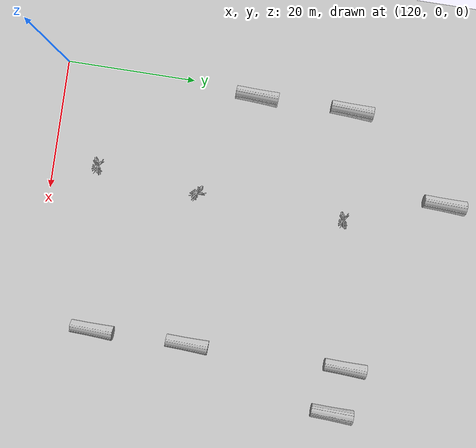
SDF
<sdf version="1.7">
 <world name="default">
  <model name="ground_plane">
   <static>1</static>
   <link name="link">
    <collision name="collision">
     <geometry><plane><normal>0 0 1</normal><size>100 100</size></plane></geometry>
     <surface><friction><ode><mu>100</mu><mu2>50</mu2></ode></friction></surface>
    </collision>
    <visual name="visual">
     <cast_shadows>0</cast_shadows>
     <geometry><plane><normal>0 0 1</normal><size>100 100</size></plane></geometry>
     <material>
      <script><uri>file://media/materials/scripts/gazebo.material</uri><name>Gazebo/Grey</name></script>
     </material>
    </visual>
   </link>
   <pose>0 0 -0.1 0 -0 0</pose>
  </model>
  <model name="buoy_3">
   <link name="link">
    <inertial>
     <pose>0 0 -2 0 -0 0</pose>
     <mass>20</mass>
     <inertia><ixx>1</ixx><ixy>0</ixy><ixz>0</ixz><iyy>1</iyy><iyz>0</iyz><izz>0.1</izz></inertia>
    </inertial>
    <collision name="upright">
     <geometry><mesh><uri>model://branche1_buoy/meshes/branche1.dae</uri></mesh></geometry>
    </collision>
    <visual name="trunk_visual">
     <geometry><mesh><uri>model://branche1_buoy/meshes/branche1.dae</uri></mesh></geometry>
    </visual>
   </link>
   <plugin name="TrunkBuoyancyPlugin" filename="libbuoyancy_gazebo_plugin.so">
    <wave_model>ocean_waves</wave_model>
    <fluid_density>1000</fluid_density>
    <fluid_level>0.0</fluid_level>
    <linear_drag>25.0</linear_drag>
    <angular_drag>2.0</angular_drag>
    <buoyancy name="buoyancy_sphere">
     <link_name>link</link_name>
     <pose>0 0 0.2 0 0 0</pose>
     <geometry><sphere><radius>0.325</radius></sphere></geometry>
    </buoyancy>
   </plugin>
   <plugin name="TrunkFollowPlugin" filename="libfollow_plugin.so">
    <link_name>link</link_name>
    <loop_forever>1</loop_forever>
    <line><direction>0</direction><length>-1</length><force>100</force><torque>1</torque></line>
   </plugin>
   <pose>135.637 6.93631 0.263866 0.134491 0.42653 1.75191</pose>
  </model>
  <model name="buoy_9">
   <link name="link">
    <inertial>
     <mass>200</mass>
     <inertia><ixx>10</ixx><ixy>0</ixy><ixz>0</ixz><iyy>10</iyy><iyz>0</iyz><izz>100</izz></inertia>
    </inertial>
    <collision name="trunk_collision">
     <pose>0 0 0 1.57 -0 0</pose>
     <geometry><cylinder><radius>1</radius><length>7</length></cylinder></geometry>
    </collision>
    <visual name="trunk_visual">
     <geometry><mesh><uri>model://trunk2_buoy/meshes/trunk2.dae</uri></mesh></geometry>
    </visual>
   </link>
   <plugin name="TrunkFollowPlugin" filename="libfollow_plugin.so">
    <link_name>link</link_name>
    <loop_forever>1</loop_forever>
    <line><direction>0</direction><length>10</length><force>1</force><torque>-10</torque></line>
   </plugin>
   <pose>161.153 10.1953 0.899983 -3.14079 1.12478 3.12877</pose>
  </model>
  <model name="buoy_13">
   <link name="link">
    <inertial>
     <pose>0 0 -2 0 -0 0</pose>
     <mass>20</mass>
     <inertia><ixx>1</ixx><ixy>0</ixy><ixz>0</ixz><iyy>1</iyy><iyz>0</iyz><izz>0.1</izz></inertia>
    </inertial>
    <collision name="upright">
     <geometry><mesh><uri>model://branche1_buoy/meshes/branche1.dae</uri></mesh></geometry>
    </collision>
    <visual name="trunk_visual">
     <geometry><mesh><uri>model://branche1_buoy/meshes/branche1.dae</uri></mesh></geometry>
    </visual>
   </link>
   <plugin name="TrunkBuoyancyPlugin" filename="libbuoyancy_gazebo_plugin.so">
    <wave_model>ocean_waves</wave_model>
    <fluid_density>1000</fluid_density>
    <fluid_level>0.0</fluid_level>
    <linear_drag>25.0</linear_drag>
    <angular_drag>2.0</angular_drag>
    <buoyancy name="buoyancy_sphere">
     <link_name>link</link_name>
     <pose>0 0 0.2 0 0 0</pose>
     <geometry><sphere><radius>0.325</radius></sphere></geometry>
    </buoyancy>
   </plugin>
   <plugin name="TrunkFollowPlugin" filename="libfollow_plugin.so">
    <link_name>link</link_name>
    <loop_forever>1</loop_forever>
    <line><direction>0</direction><length>-1</length><force>100</force><torque>1</torque></line>
   </plugin>
   <pose>137.494 23.0723 0.184502 0.109709 0.326016 0.895305</pose>
  </model>
  <model name="buoy_18">
   <link name="link">
    <inertial>
     <mass>200</mass>
     <inertia><ixx>10</ixx><ixy>0</ixy><ixz>0</ixz><iyy>10</iyy><iyz>0</iyz><izz>100</izz></inertia>
    </inertial>
    <collision name="trunk_collision">
     <pose>0 0 0 1.57 -0 0</pose>
     <geometry><cylinder><radius>1</radius><length>7</length></cylinder></geometry>
    </collision>
    <visual name="trunk_visual">
     <geometry><mesh><uri>model://trunk2_buoy/meshes/trunk2.dae</uri></mesh></geometry>
    </visual>
   </link>
   <plugin name="TrunkFollowPlugin" filename="libfollow_plugin.so">
    <link_name>link</link_name>
    <loop_forever>1</loop_forever>
    <line><direction>0</direction><length>10</length><force>1</force><torque>-10</torque></line>
   </plugin>
   <pose>121.153 30.1953 0.899996 -3.1408 1.12479 3.12876</pose>
  </model>
  <model name="buoy_19">
   <link name="link">
    <inertial>
     <mass>200</mass>
     <inertia><ixx>10</ixx><ixy>0</ixy><ixz>0</ixz><iyy>10</iyy><iyz>0</iyz><izz>100</izz></inertia>
    </inertial>
    <collision name="trunk_collision">
     <pose>0 0 0 1.57 -0 0</pose>
     <geometry><cylinder><radius>1</radius><length>7</length></cylinder></geometry>
    </collision>
    <visual name="trunk_visual">
     <geometry><mesh><uri>model://trunk2_buoy/meshes/trunk2.dae</uri></mesh></geometry>
    </visual>
   </link>
   <plugin name="TrunkFollowPlugin" filename="libfollow_plugin.so">
    <link_name>link</link_name>
    <loop_forever>1</loop_forever>
    <line><direction>0</direction><length>10</length><force>1</force><torque>-10</torque></line>
   </plugin>
   <pose>161.153 25.1953 0.899983 -3.14079 1.12478 3.12877</pose>
  </model>
  <model name="buoy_23">
   <link name="link">
    <inertial>
     <pose>0 0 -2 0 -0 0</pose>
     <mass>20</mass>
     <inertia><ixx>1</ixx><ixy>0</ixy><ixz>0</ixz><iyy>1</iyy><iyz>0</iyz><izz>0.1</izz></inertia>
    </inertial>
    <collision name="upright">
     <geometry><mesh><uri>model://branche1_buoy/meshes/branche1.dae</uri></mesh></geometry>
    </collision>
    <visual name="trunk_visual">
     <geometry><mesh><uri>model://branche1_buoy/meshes/branche1.dae</uri></mesh></geometry>
    </visual>
   </link>
   <plugin name="TrunkBuoyancyPlugin" filename="libbuoyancy_gazebo_plugin.so">
    <wave_model>ocean_waves</wave_model>
    <fluid_density>1000</fluid_density>
    <fluid_level>0.0</fluid_level>
    <linear_drag>25.0</linear_drag>
    <angular_drag>2.0</angular_drag>
    <buoyancy name="buoyancy_sphere">
     <link_name>link</link_name>
     <pose>0 0 0.2 0 0 0</pose>
     <geometry><sphere><radius>0.325</radius></sphere></geometry>
    </buoyancy>
   </plugin>
   <plugin name="TrunkFollowPlugin" filename="libfollow_plugin.so">
    <link_name>link</link_name>
    <loop_forever>1</loop_forever>
    <line><direction>0</direction><length>-1</length><force>100</force><torque>1</torque></line>
   </plugin>
   <pose>138.214 46.4192 0.208458 0.117004 0.356086 1.79203</pose>
  </model>
  <model name="buoy_28">
   <link name="link">
    <inertial>
     <mass>200</mass>
     <inertia><ixx>10</ixx><ixy>0</ixy><ixz>0</ixz><iyy>10</iyy><iyz>0</iyz><izz>100</izz></inertia>
    </inertial>
    <collision name="trunk_collision">
     <pose>0 0 0 1.57 -0 0</pose>
     <geometry><cylinder><radius>1</radius><length>7</length></cylinder></geometry>
    </collision>
    <visual name="trunk_visual">
     <geometry><mesh><uri>model://trunk2_buoy/meshes/trunk2.dae</uri></mesh></geometry>
    </visual>
   </link>
   <plugin name="TrunkFollowPlugin" filename="libfollow_plugin.so">
    <link_name>link</link_name>
    <loop_forever>1</loop_forever>
    <line><direction>0</direction><length>10</length><force>1</force><torque>-10</torque></line>
   </plugin>
   <pose>121.153 45.1953 0.899983 -3.14079 1.12478 3.12877</pose>
  </model>
  <model name="buoy_29">
   <link name="link">
    <inertial>
     <mass>200</mass>
     <inertia><ixx>10</ixx><ixy>0</ixy><ixz>0</ixz><iyy>10</iyy><iyz>0</iyz><izz>100</izz></inertia>
    </inertial>
    <collision name="trunk_collision">
     <pose>0 0 0 1.57 -0 0</pose>
     <geometry><cylinder><radius>1</radius><length>7</length></cylinder></geometry>
    </collision>
    <visual name="trunk_visual">
     <geometry><mesh><uri>model://trunk2_buoy/meshes/trunk2.dae</uri></mesh></geometry>
    </visual>
   </link>
   <plugin name="TrunkFollowPlugin" filename="libfollow_plugin.so">
    <link_name>link</link_name>
    <loop_forever>1</loop_forever>
    <line><direction>0</direction><length>10</length><force>1</force><torque>-10</torque></line>
   </plugin>
   <pose>161.153 50.1953 0.899983 -3.14079 1.12478 3.12877</pose>
  </model>
  <model name="buoy_30">
   <link name="link">
    <inertial>
     <mass>200</mass>
     <inertia><ixx>10</ixx><ixy>0</ixy><ixz>0</ixz><iyy>10</iyy><iyz>0</iyz><izz>100</izz></inertia>
    </inertial>
    <collision name="trunk_collision">
     <pose>0 0 0 1.57 -0 0</pose>
     <geometry><cylinder><radius>1</radius><length>7</length></cylinder></geometry>
    </collision>
    <visual name="trunk_visual">
     <geometry><mesh><uri>model://trunk2_buoy/meshes/trunk2.dae</uri></mesh></geometry>
    </visual>
   </link>
   <plugin name="TrunkFollowPlugin" filename="libfollow_plugin.so">
    <link_name>link</link_name>
    <loop_forever>1</loop_forever>
    <line><direction>0</direction><length>10</length><force>1</force><torque>-10</torque></line>
   </plugin>
   <pose>168.47 49.2319 0.899193 -0.001293 1.46023 -0.010631</pose>
  </model>
  <model name="buoy_26_clone_2">
   <link name="link">
    <inertial>
     <mass>200</mass>
     <inertia><ixx>10</ixx><ixy>0</ixy><ixz>0</ixz><iyy>10</iyy><iyz>0</iyz><izz>100</izz></inertia>
    </inertial>
    <collision name="trunk_collision">
     <pose>0 0 0 1.57 -0 0</pose>
     <geometry><cylinder><radius>1</radius><length>7</length></cylinder></geometry>
    </collision>
    <visual name="trunk_visual">
     <geometry><mesh><uri>model://trunk2_buoy/meshes/trunk2.dae</uri></mesh></geometry>
    </visual>
   </link>
   <plugin name="TrunkFollowPlugin" filename="libfollow_plugin.so">
    <link_name>link</link_name>
    <loop_forever>1</loop_forever>
    <line><direction>0</direction><length>10</length><force>1</force><torque>-10</torque></line>
   </plugin>
   <pose>133.558 61.7056 0.899983 -3.14078 1.16885 3.13387</pose>
  </model>
 </world>
</sdf>
